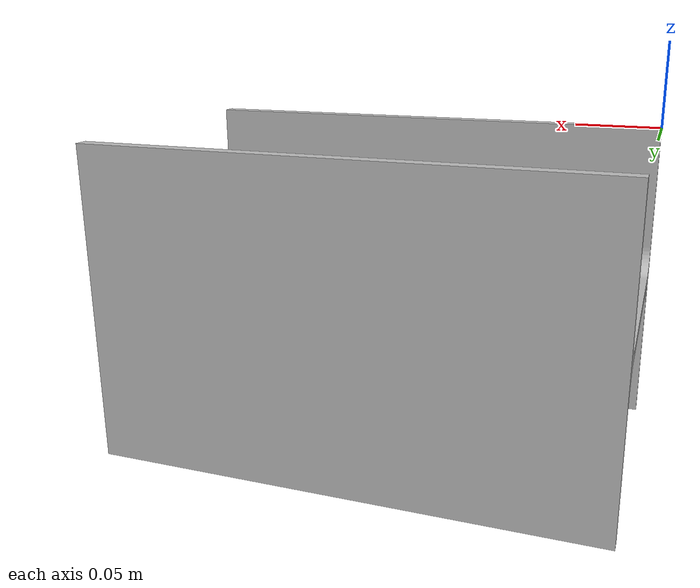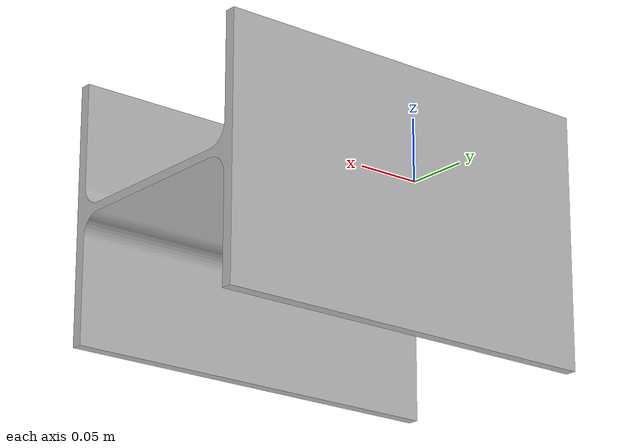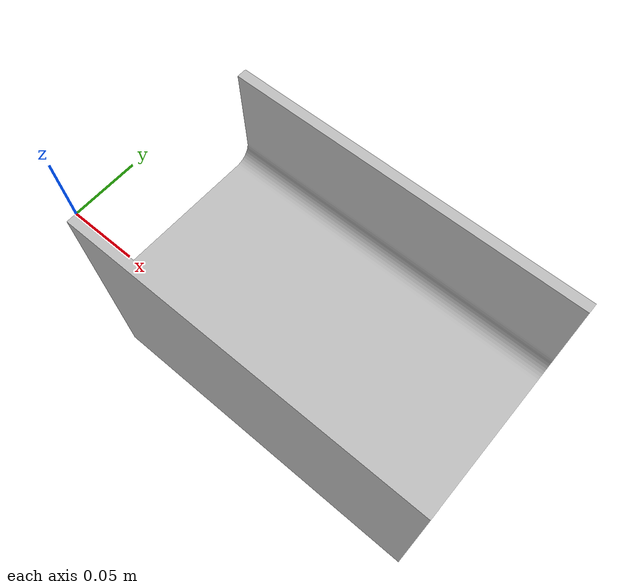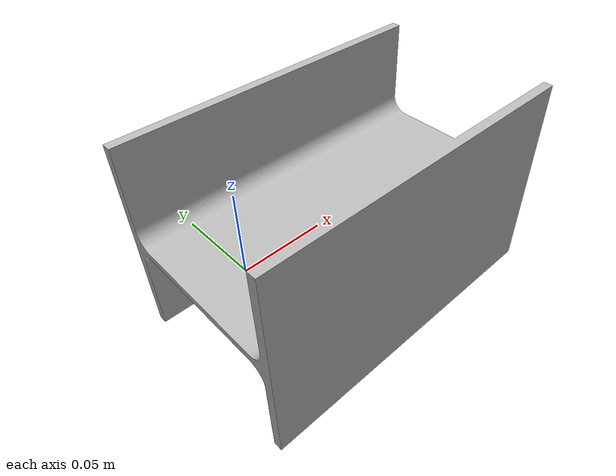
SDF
<?xml version="1.0" ?>
<sdf version="1.4">
  <model name="beam_weld">
    <static>true</static>
    <link name="link">
      <inertial>
        <mass>1000</mass>
      </inertial>
      <collision name="collision">
        <geometry>
          <mesh>
            <uri>model://beam/meshes/beam.stl</uri>
          </mesh>
        </geometry>
      </collision>
      <visual name="visual">
        <transparency>0.0</transparency>
        <geometry>
          <mesh>
            <uri>model://beam/meshes/beam.stl</uri>
          </mesh>
        </geometry>
      </visual>
    </link>
  </model>
</sdf>
